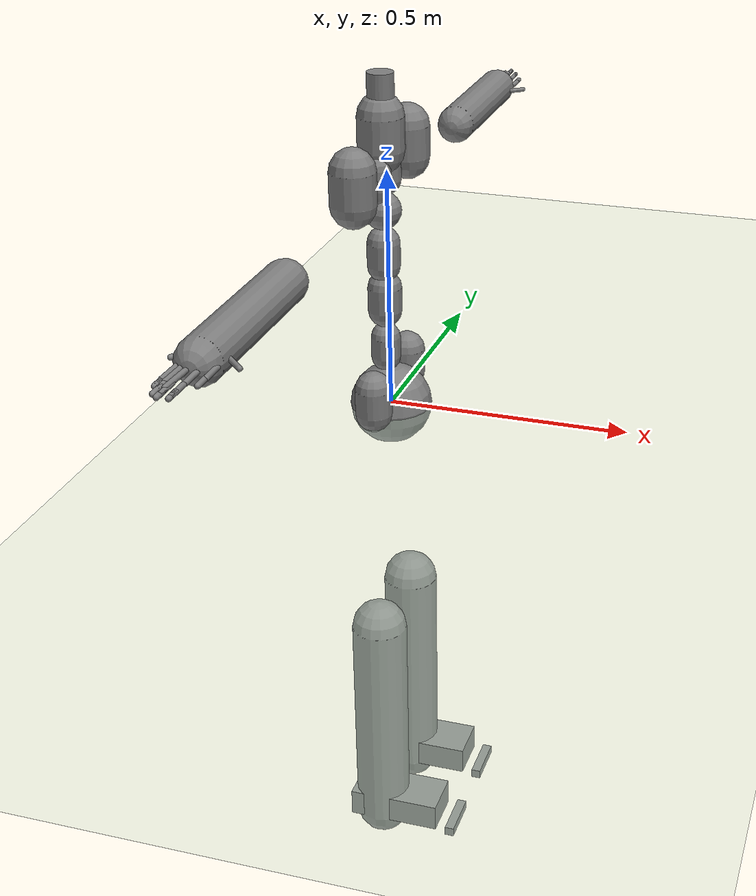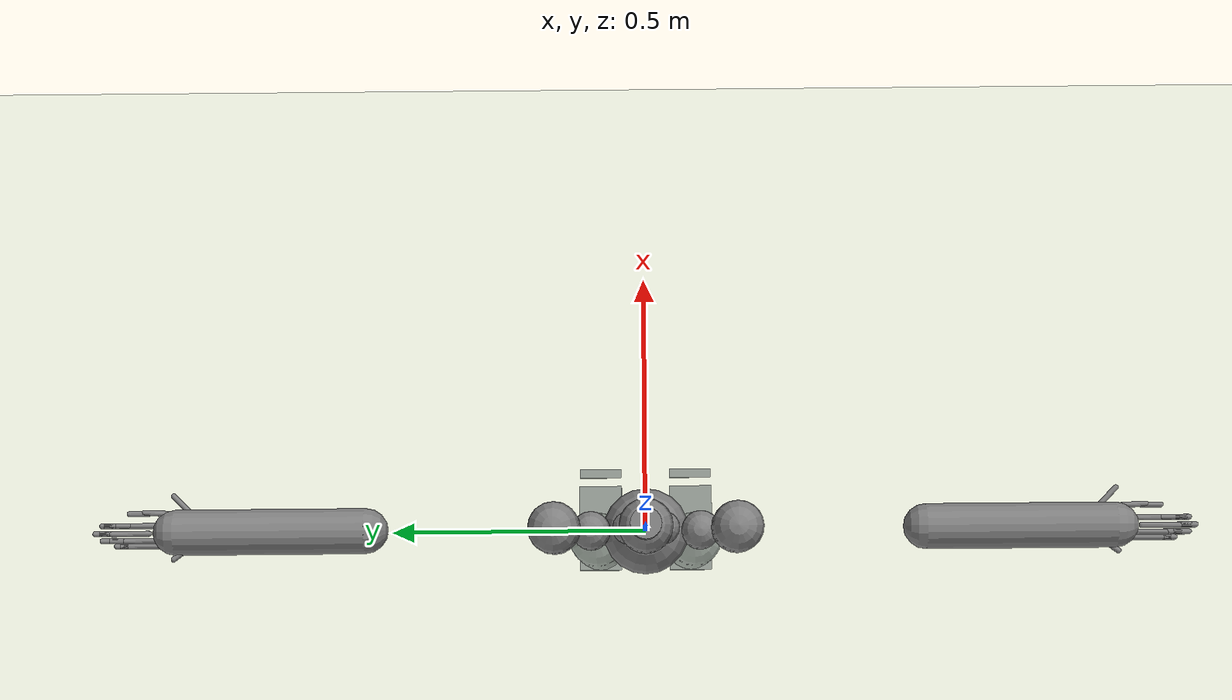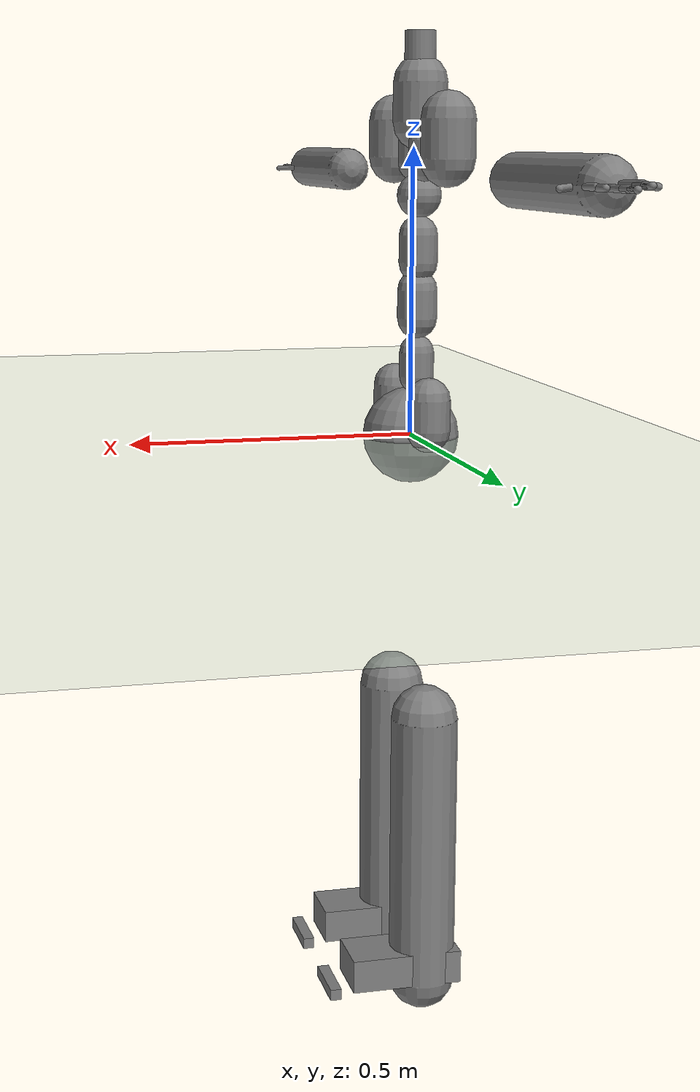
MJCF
<?xml version="1.0" ?>
<mujoco model="humanoid">
  <compiler coordinate="local"/>
  <statistic extent="2" center="0 0 1"/>
  <option timestep="0.00555"/>
  <default>
    <motor ctrlrange="-1 1" ctrllimited="true"/>
    <geom type="capsule" condim="1" friction="1.0 0.05 0.05" solimp=".9 .99 .003" solref=".015 1"/>
    <joint type="hinge" damping="0.1" stiffness="5" armature=".007" limited="true" solimplimit="0 .99 .01"/>
    <site size=".04" group="3"/>
  </default>
  <asset>
    <texture type="skybox" builtin="gradient" rgb1=".4 .5 .6" rgb2="0 0 0" width="100" height="100"/>
    <texture builtin="flat" height="1278" mark="cross" markrgb="1 1 1" name="texgeom" random="0.01" rgb1="0.8 0.6 0.4" rgb2="0.8 0.6 0.4" type="cube" width="127"/>
    <texture builtin="checker" height="100" name="texplane" rgb1="0 0 0" rgb2="0.8 0.8 0.8" type="2d" width="100"/>
    <material name="MatPlane" reflectance="0.5" shininess="1" specular="1" texrepeat="60 60" texture="texplane"/>
    <material name="geom" texture="texgeom" texuniform="true"/>
  </asset>
  <worldbody>
    <light cutoff="100" diffuse="1 1 1" dir="-0 0 -1.3" directional="true" exponent="1" pos="0 0 1.3" specular=".1 .1 .1"/>
    <geom conaffinity="1" condim="3" name="floor" pos="0 0 0" rgba="0.8 0.9 0.8 1" size="100 100 .2" type="plane" material="MatPlane"/>
    <body name="pHipOrigin" pos="0 0 0">
      <freejoint name="pHipOrigin"/>
      <geom type="sphere" contype="1" conaffinity="1" density="4629.6296296296305" size="0.08479" pos="0.0000 0.0000 -0.0000"/>
      <body name="jL5S1" pos="-0.00955469 0 0.08599200">
        <geom type="capsule" contype="1" conaffinity="1" density="1000" fromto="0 0 0.01730 0 0 0.06056" size="0.03028"/>
        <joint name="jL5S1_x" type="hinge" pos="0 0 0" axis="1 0 0" stiffness="500" damping="500" armature="0.02" range="-180.0000 180.0000"/>
        <joint name="jL5S1_y" type="hinge" pos="0 0 0" axis="0 1 0" stiffness="500" damping="500" armature="0.02" range="-180.0000 180.0000"/>
        <joint name="jL5S1_z" type="hinge" pos="0 0 0" axis="0 0 1" stiffness="500" damping="500" armature="0.02" range="-180.0000 180.0000"/>
        <body name="jL4L3" pos="0 0 0.09949745">
          <geom type="capsule" contype="1" conaffinity="1" density="1000" fromto="0 0 0.01990 0 0 0.06965" size="0.03482"/>
          <joint name="jL4L3_x" type="hinge" pos="0 0 0" axis="1 0 0" stiffness="500" damping="500" armature="0.02" range="-180.0000 180.0000"/>
          <joint name="jL4L3_y" type="hinge" pos="0 0 0" axis="0 1 0" stiffness="500" damping="500" armature="0.02" range="-180.0000 180.0000"/>
          <joint name="jL4L3_z" type="hinge" pos="0 0 0" axis="0 0 1" stiffness="500" damping="500" armature="0.02" range="-180.0000 180.0000"/>
          <body name="jL1T12" pos="-0.00074468 0 0.09652331">
            <geom type="capsule" contype="1" conaffinity="1" density="1000" fromto="0 0 0.01931 0 0 0.06757" size="0.03378"/>
            <joint name="jL1T12_x" type="hinge" pos="0 0 0" axis="1 0 0" stiffness="500" damping="500" armature="0.02" range="-180.0000 180.0000"/>
            <joint name="jL1T12_y" type="hinge" pos="0 0 0" axis="0 1 0" stiffness="500" damping="500" armature="0.02" range="-180.0000 180.0000"/>
            <joint name="jL1T12_z" type="hinge" pos="0 0 0" axis="0 0 1" stiffness="500" damping="500" armature="0.02" range="-180.0000 180.0000"/>
            <body name="jT9T8" pos="-0.00074526 0 0.09641115">
              <geom type="sphere" contype="1" conaffinity="1" density="1000" size="0.03857" pos="0.000 0.0000 0.038566"/>
              <joint name="jT9T8_x" type="hinge" pos="0 0 0" axis="1 0 0" stiffness="500" damping="500" armature="0.02" range="-180.0000 180.0000"/>
              <joint name="jT9T8_y" type="hinge" pos="0 0 0" axis="0 1 0" stiffness="500" damping="500" armature="0.02" range="-180.0000 180.0000"/>
              <joint name="jT9T8_z" type="hinge" pos="0 0 0" axis="0 0 1" stiffness="500" damping="500" armature="0.02" range="-180.0000 180.0000"/>
              <body name="jT1C7" pos="0 0 0.13433501">
                <geom type="capsule" contype="1" conaffinity="1" density="1000" fromto="0 0 0.02687 0 0 0.09403" size="0.04702"/>
                <joint name="jT1C7_x" type="hinge" pos="0 0 0" axis="1 0 0" stiffness="500" damping="500" armature="0.02" range="-180.0000 180.0000"/>
                <joint name="jT1C7_y" type="hinge" pos="0 0 0" axis="0 1 0" stiffness="500" damping="500" armature="0.02" range="-180.0000 180.0000"/>
                <joint name="jT1C7_z" type="hinge" pos="0 0 0" axis="0 0 1" stiffness="500" damping="500" armature="0.02" range="-180.0000 180.0000"/>
                <body name="jC1Head" pos="0.00105737 0 0.08962587">
                  <geom type="cylinder" contype="1" conaffinity="1" density="1000" fromto="0 0 0 0 0 0.08963" size="0.02689"/>
                  <joint name="jC1Head_x" type="hinge" pos="0 0 0" axis="1 0 0" stiffness="500" damping="500" armature="0.02" range="-180.0000 180.0000"/>
                  <joint name="jC1Head_y" type="hinge" pos="0 0 0" axis="0 1 0" stiffness="500" damping="500" armature="0.02" range="-180.0000 180.0000"/>
                  <joint name="jC1Head_z" type="hinge" pos="0 0 0" axis="0 0 1" stiffness="500" damping="500" armature="0.02" range="-180.0000 180.0000"/>
                </body>
              </body>
              <body name="jRightT4Shoulder" pos="0 -0.03093735 0.07543204">
                <geom type="capsule" contype="1" conaffinity="1" density="1000" fromto="0 0 0.01631 0 0 0.05707" size="0.02854"/>
                <joint name="jRightT4Shoulder_x" type="hinge" pos="0 0 0" axis="1 0 0" stiffness="500" damping="500" armature="0.02" range="-180.0000 180.0000"/>
                <joint name="jRightT4Shoulder_y" type="hinge" pos="0 0 0" axis="0 1 0" stiffness="500" damping="500" armature="0.02" range="-180.0000 180.0000"/>
                <joint name="jRightT4Shoulder_z" type="hinge" pos="0 0 0" axis="0 0 1" stiffness="500" damping="500" armature="0.02" range="-180.0000 180.0000"/>
                <body name="jRightShoulder" pos="0 -0.13014090 0">
                  <geom type="capsule" contype="1" conaffinity="1" density="1000" fromto="0 0 0.02603 0 0 0.09110" size="0.04555"/>
                  <joint name="jRightShoulder_x" type="hinge" pos="0 0 0" axis="1 0 0" stiffness="500" damping="500" armature="0.02" range="-180.0000 180.0000"/>
                  <joint name="jRightShoulder_y" type="hinge" pos="0 0 0" axis="0 1 0" stiffness="500" damping="500" armature="0.02" range="-180.0000 180.0000"/>
                  <joint name="jRightShoulder_z" type="hinge" pos="0 0 0" axis="0 0 1" stiffness="500" damping="500" armature="0.02" range="-180.0000 180.0000"/>
                  <body name="jRightElbow" pos="0 -0.33835456 0">
                    <geom type="capsule" contype="1" conaffinity="1" density="1000" fromto="0 0 0 0.00000000 -0.33835456 0.00000000" size="0.04060"/>
                    <joint name="jRightElbow_x" type="hinge" pos="0 0 0" axis="1 0 0" stiffness="500" damping="500" armature="0.02" range="-180.0000 180.0000"/>
                    <joint name="jRightElbow_y" type="hinge" pos="0 0 0" axis="0 1 0" stiffness="500" damping="500" armature="0.02" range="-180.0000 180.0000"/>
                    <joint name="jRightElbow_z" type="hinge" pos="0 0 0" axis="0 0 1" stiffness="500" damping="500" armature="0.02" range="-180.0000 180.0000"/>
                    <body name="jRightWrist" pos="0.00011163 -0.27736065 0">
                      <geom density="1000" type="box" pos="0 0 0" size="0.035 0.03 0.01" quat="1.0000 0.0000 0.0000 0.0000"/>
                      <joint name="jRightWrist_x" type="hinge" pos="0 0 0" axis="1 0 0" stiffness="500" damping="500" armature="0.02" range="-180.0000 180.0000"/>
                      <joint name="jRightWrist_y" type="hinge" pos="0 0 0" axis="0 1 0" stiffness="500" damping="500" armature="0.02" range="-180.0000 180.0000"/>
                      <joint name="jRightWrist_z" type="hinge" pos="0 0 0" axis="0 0 1" stiffness="500" damping="500" armature="0.02" range="-180.0000 180.0000"/>
                      <body name="jRightFirstCMC" pos="0.03315231 -0.03177835 -0.00150134">
                        <geom type="capsule" contype="1" conaffinity="1" density="1000" fromto="0 0 0 0.03315231 -0.03177835 -0.00150134" size="0.005"/>
                        <joint name="jRightFirstCMC_x" type="hinge" pos="0 0 0" axis="1 0 0" stiffness="500" damping="500" armature="0.02" range="-180.0000 180.0000"/>
                        <joint name="jRightFirstCMC_y" type="hinge" pos="0 0 0" axis="0 1 0" stiffness="500" damping="500" armature="0.02" range="-180.0000 180.0000"/>
                        <joint name="jRightFirstCMC_z" type="hinge" pos="0 0 0" axis="0 0 1" stiffness="500" damping="500" armature="0.02" range="-180.0000 180.0000"/>
                        <body name="jRightFirstMCP" pos="0.00149789 -0.04226939 0.00089315">
                          <geom type="capsule" contype="1" conaffinity="1" density="1000" fromto="0 0 0 0.00149789 -0.04226939 0.00089315" size="0.005"/>
                          <joint name="jRightFirstMCP_x" type="hinge" pos="0 0 0" axis="1 0 0" stiffness="500" damping="500" armature="0.02" range="-180.0000 180.0000"/>
                          <joint name="jRightFirstMCP_y" type="hinge" pos="0 0 0" axis="0 1 0" stiffness="500" damping="500" armature="0.02" range="-180.0000 180.0000"/>
                          <joint name="jRightFirstMCP_z" type="hinge" pos="0 0 0" axis="0 0 1" stiffness="500" damping="500" armature="0.02" range="-180.0000 180.0000"/>
                          <body name="jRightIP" pos="0 -0.03429700 0">
                            <geom type="capsule" contype="1" conaffinity="1" density="1000" fromto="0 0 0 0.00000000 -0.03429700 0.00000000" size="0.005"/>
                            <joint name="jRightIP_x" type="hinge" pos="0 0 0" axis="1 0 0" stiffness="500" damping="500" armature="0.02" range="-180.0000 180.0000"/>
                            <joint name="jRightIP_y" type="hinge" pos="0 0 0" axis="0 1 0" stiffness="500" damping="500" armature="0.02" range="-180.0000 180.0000"/>
                            <joint name="jRightIP_z" type="hinge" pos="0 0 0" axis="0 0 1" stiffness="500" damping="500" armature="0.02" range="-180.0000 180.0000"/>
                          </body>
                        </body>
                      </body>
                      <body name="jRightSecondCMC" pos="0.01272578 -0.03718070 -0.00064852">
                        <geom type="capsule" contype="1" conaffinity="1" density="1000" fromto="0 0 0 0.01272578 -0.03718070 -0.00064852" size="0.005"/>
                        <joint name="jRightSecondCMC_x" type="hinge" pos="0 0 0" axis="1 0 0" stiffness="500" damping="500" armature="0.02" range="-180.0000 180.0000"/>
                        <joint name="jRightSecondCMC_y" type="hinge" pos="0 0 0" axis="0 1 0" stiffness="500" damping="500" armature="0.02" range="-180.0000 180.0000"/>
                        <joint name="jRightSecondCMC_z" type="hinge" pos="0 0 0" axis="0 0 1" stiffness="500" damping="500" armature="0.02" range="-180.0000 180.0000"/>
                        <body name="jRightSecondMCP" pos="-0.00038700 -0.06172404 -0.00064028">
                          <geom type="capsule" contype="1" conaffinity="1" density="1000" fromto="0 0 0 -0.00038700 -0.06172404 -0.00064028" size="0.005"/>
                          <joint name="jRightSecondMCP_x" type="hinge" pos="0 0 0" axis="1 0 0" stiffness="500" damping="500" armature="0.02" range="-180.0000 180.0000"/>
                          <joint name="jRightSecondMCP_y" type="hinge" pos="0 0 0" axis="0 1 0" stiffness="500" damping="500" armature="0.02" range="-180.0000 180.0000"/>
                          <joint name="jRightSecondMCP_z" type="hinge" pos="0 0 0" axis="0 0 1" stiffness="500" damping="500" armature="0.02" range="-180.0000 180.0000"/>
                          <body name="jRightSecondPIP" pos="0 -0.04482743 0">
                            <geom type="capsule" contype="1" conaffinity="1" density="1000" fromto="0 0 0 0.00000000 -0.04482743 0.00000000" size="0.005"/>
                            <joint name="jRightSecondPIP_x" type="hinge" pos="0 0 0" axis="1 0 0" stiffness="500" damping="500" armature="0.02" range="-180.0000 180.0000"/>
                            <joint name="jRightSecondPIP_y" type="hinge" pos="0 0 0" axis="0 1 0" stiffness="500" damping="500" armature="0.02" range="-180.0000 180.0000"/>
                            <joint name="jRightSecondPIP_z" type="hinge" pos="0 0 0" axis="0 0 1" stiffness="500" damping="500" armature="0.02" range="-180.0000 180.0000"/>
                            <body name="jRightSecondDIP" pos="0 -0.02446628 0">
                              <geom type="capsule" contype="1" conaffinity="1" density="1000" fromto="0 0 0 0.00000000 -0.02446628 0.00000000" size="0.005"/>
                              <joint name="jRightSecondDIP_x" type="hinge" pos="0 0 0" axis="1 0 0" stiffness="500" damping="500" armature="0.02" range="-180.0000 180.0000"/>
                              <joint name="jRightSecondDIP_y" type="hinge" pos="0 0 0" axis="0 1 0" stiffness="500" damping="500" armature="0.02" range="-180.0000 180.0000"/>
                              <joint name="jRightSecondDIP_z" type="hinge" pos="0 0 0" axis="0 0 1" stiffness="500" damping="500" armature="0.02" range="-180.0000 180.0000"/>
                            </body>
                          </body>
                        </body>
                      </body>
                      <body name="jRightThirdCMC" pos="-0.00075770 -0.04097490 0.00172265">
                        <geom type="capsule" contype="1" conaffinity="1" density="1000" fromto="0 0 0 -0.00075770 -0.04097490 0.00172265" size="0.005"/>
                        <joint name="jRightThirdCMC_x" type="hinge" pos="0 0 0" axis="1 0 0" stiffness="500" damping="500" armature="0.02" range="-180.0000 180.0000"/>
                        <joint name="jRightThirdCMC_y" type="hinge" pos="0 0 0" axis="0 1 0" stiffness="500" damping="500" armature="0.02" range="-180.0000 180.0000"/>
                        <joint name="jRightThirdCMC_z" type="hinge" pos="0 0 0" axis="0 0 1" stiffness="500" damping="500" armature="0.02" range="-180.0000 180.0000"/>
                        <body name="jRightThirdMCP" pos="-0.00079945 -0.06623436 0.00180198">
                          <geom type="capsule" contype="1" conaffinity="1" density="1000" fromto="0 0 0 -0.00079945 -0.06623436 0.00180198" size="0.005"/>
                          <joint name="jRightThirdMCP_x" type="hinge" pos="0 0 0" axis="1 0 0" stiffness="500" damping="500" armature="0.02" range="-180.0000 180.0000"/>
                          <joint name="jRightThirdMCP_y" type="hinge" pos="0 0 0" axis="0 1 0" stiffness="500" damping="500" armature="0.02" range="-180.0000 180.0000"/>
                          <joint name="jRightThirdMCP_z" type="hinge" pos="0 0 0" axis="0 0 1" stiffness="500" damping="500" armature="0.02" range="-180.0000 180.0000"/>
                          <body name="jRightThirdPIP" pos="0 -0.04398780 0">
                            <geom type="capsule" contype="1" conaffinity="1" density="1000" fromto="0 0 0 0.00000000 -0.04398780 0.00000000" size="0.005"/>
                            <joint name="jRightThirdPIP_x" type="hinge" pos="0 0 0" axis="1 0 0" stiffness="500" damping="500" armature="0.02" range="-180.0000 180.0000"/>
                            <joint name="jRightThirdPIP_y" type="hinge" pos="0 0 0" axis="0 1 0" stiffness="500" damping="500" armature="0.02" range="-180.0000 180.0000"/>
                            <joint name="jRightThirdPIP_z" type="hinge" pos="0 0 0" axis="0 0 1" stiffness="500" damping="500" armature="0.02" range="-180.0000 180.0000"/>
                            <body name="jRightThirdDIP" pos="0 -0.02600026 0">
                              <geom type="capsule" contype="1" conaffinity="1" density="1000" fromto="0 0 0 0.00000000 -0.02600026 0.00000000" size="0.005"/>
                              <joint name="jRightThirdDIP_x" type="hinge" pos="0 0 0" axis="1 0 0" stiffness="500" damping="500" armature="0.02" range="-180.0000 180.0000"/>
                              <joint name="jRightThirdDIP_y" type="hinge" pos="0 0 0" axis="0 1 0" stiffness="500" damping="500" armature="0.02" range="-180.0000 180.0000"/>
                              <joint name="jRightThirdDIP_z" type="hinge" pos="0 0 0" axis="0 0 1" stiffness="500" damping="500" armature="0.02" range="-180.0000 180.0000"/>
                            </body>
                          </body>
                        </body>
                      </body>
                      <body name="jRightFourthCMC" pos="-0.01327380 -0.03696971 0.00087021">
                        <geom type="capsule" contype="1" conaffinity="1" density="1000" fromto="0 0 0 -0.01327380 -0.03696971 0.00087021" size="0.005"/>
                        <joint name="jRightFourthCMC_x" type="hinge" pos="0 0 0" axis="1 0 0" stiffness="500" damping="500" armature="0.02" range="-180.0000 180.0000"/>
                        <joint name="jRightFourthCMC_y" type="hinge" pos="0 0 0" axis="0 1 0" stiffness="500" damping="500" armature="0.02" range="-180.0000 180.0000"/>
                        <joint name="jRightFourthCMC_z" type="hinge" pos="0 0 0" axis="0 0 1" stiffness="500" damping="500" armature="0.02" range="-180.0000 180.0000"/>
                        <body name="jRightFourthMCP" pos="-0.00041523 -0.05691085 0.00089411">
                          <geom type="capsule" contype="1" conaffinity="1" density="1000" fromto="0 0 0 -0.00041523 -0.05691085 0.00089411" size="0.005"/>
                          <joint name="jRightFourthMCP_x" type="hinge" pos="0 0 0" axis="1 0 0" stiffness="500" damping="500" armature="0.02" range="-180.0000 180.0000"/>
                          <joint name="jRightFourthMCP_y" type="hinge" pos="0 0 0" axis="0 1 0" stiffness="500" damping="500" armature="0.02" range="-180.0000 180.0000"/>
                          <joint name="jRightFourthMCP_z" type="hinge" pos="0 0 0" axis="0 0 1" stiffness="500" damping="500" armature="0.02" range="-180.0000 180.0000"/>
                          <body name="jRightFourthPIP" pos="0 -0.04192657 0">
                            <geom type="capsule" contype="1" conaffinity="1" density="1000" fromto="0 0 0 0.00000000 -0.04192657 0.00000000" size="0.005"/>
                            <joint name="jRightFourthPIP_x" type="hinge" pos="0 0 0" axis="1 0 0" stiffness="500" damping="500" armature="0.02" range="-180.0000 180.0000"/>
                            <joint name="jRightFourthPIP_y" type="hinge" pos="0 0 0" axis="0 1 0" stiffness="500" damping="500" armature="0.02" range="-180.0000 180.0000"/>
                            <joint name="jRightFourthPIP_z" type="hinge" pos="0 0 0" axis="0 0 1" stiffness="500" damping="500" armature="0.02" range="-180.0000 180.0000"/>
                            <body name="jRightFourthDIP" pos="0 -0.02761231 0">
                              <geom type="capsule" contype="1" conaffinity="1" density="1000" fromto="0 0 0 0.00000000 -0.02761231 0.00000000" size="0.005"/>
                              <joint name="jRightFourthDIP_x" type="hinge" pos="0 0 0" axis="1 0 0" stiffness="500" damping="500" armature="0.02" range="-180.0000 180.0000"/>
                              <joint name="jRightFourthDIP_y" type="hinge" pos="0 0 0" axis="0 1 0" stiffness="500" damping="500" armature="0.02" range="-180.0000 180.0000"/>
                              <joint name="jRightFourthDIP_z" type="hinge" pos="0 0 0" axis="0 0 1" stiffness="500" damping="500" armature="0.02" range="-180.0000 180.0000"/>
                            </body>
                          </body>
                        </body>
                      </body>
                      <body name="jRightFifthCMC" pos="-0.02323775 -0.03237915 0.00063874">
                        <geom type="capsule" contype="1" conaffinity="1" density="1000" fromto="0 0 0 -0.02323775 -0.03237915 0.00063874" size="0.005"/>
                        <joint name="jRightFifthCMC_x" type="hinge" pos="0 0 0" axis="1 0 0" stiffness="500" damping="500" armature="0.02" range="-180.0000 180.0000"/>
                        <joint name="jRightFifthCMC_y" type="hinge" pos="0 0 0" axis="0 1 0" stiffness="500" damping="500" armature="0.02" range="-180.0000 180.0000"/>
                        <joint name="jRightFifthCMC_z" type="hinge" pos="0 0 0" axis="0 0 1" stiffness="500" damping="500" armature="0.02" range="-180.0000 180.0000"/>
                        <body name="jRightFifthMCP" pos="-0.00000819 -0.05541997 0.00076265">
                          <geom type="capsule" contype="1" conaffinity="1" density="1000" fromto="0 0 0 -0.00000819 -0.05541997 0.00076265" size="0.005"/>
                          <joint name="jRightFifthMCP_x" type="hinge" pos="0 0 0" axis="1 0 0" stiffness="500" damping="500" armature="0.02" range="-180.0000 180.0000"/>
                          <joint name="jRightFifthMCP_y" type="hinge" pos="0 0 0" axis="0 1 0" stiffness="500" damping="500" armature="0.02" range="-180.0000 180.0000"/>
                          <joint name="jRightFifthMCP_z" type="hinge" pos="0 0 0" axis="0 0 1" stiffness="500" damping="500" armature="0.02" range="-180.0000 180.0000"/>
                          <body name="jRightFifthPIP" pos="0 -0.03538021 0">
                            <geom type="capsule" contype="1" conaffinity="1" density="1000" fromto="0 0 0 0.00000000 -0.03538021 0.00000000" size="0.005"/>
                            <joint name="jRightFifthPIP_x" type="hinge" pos="0 0 0" axis="1 0 0" stiffness="500" damping="500" armature="0.02" range="-180.0000 180.0000"/>
                            <joint name="jRightFifthPIP_y" type="hinge" pos="0 0 0" axis="0 1 0" stiffness="500" damping="500" armature="0.02" range="-180.0000 180.0000"/>
                            <joint name="jRightFifthPIP_z" type="hinge" pos="0 0 0" axis="0 0 1" stiffness="500" damping="500" armature="0.02" range="-180.0000 180.0000"/>
                            <body name="jRightFifthDIP" pos="0 -0.02114615 0">
                              <geom type="capsule" contype="1" conaffinity="1" density="1000" fromto="0 0 0 0.00000000 -0.02114615 0.00000000" size="0.005"/>
                              <joint name="jRightFifthDIP_x" type="hinge" pos="0 0 0" axis="1 0 0" stiffness="500" damping="500" armature="0.02" range="-180.0000 180.0000"/>
                              <joint name="jRightFifthDIP_y" type="hinge" pos="0 0 0" axis="0 1 0" stiffness="500" damping="500" armature="0.02" range="-180.0000 180.0000"/>
                              <joint name="jRightFifthDIP_z" type="hinge" pos="0 0 0" axis="0 0 1" stiffness="500" damping="500" armature="0.02" range="-180.0000 180.0000"/>
                            </body>
                          </body>
                        </body>
                      </body>
                    </body>
                  </body>
                </body>
              </body>
              <body name="jLeftT4Shoulder" pos="0 0.03079467 0.07508417">
                <geom type="capsule" contype="1" conaffinity="1" density="1000" fromto="0 0 0.01623 0 0 0.05681" size="0.02840"/>
                <joint name="jLeftT4Shoulder_x" type="hinge" pos="0 0 0" axis="1 0 0" stiffness="500" damping="500" armature="0.02" range="-180.0000 180.0000"/>
                <joint name="jLeftT4Shoulder_y" type="hinge" pos="0 0 0" axis="0 1 0" stiffness="500" damping="500" armature="0.02" range="-180.0000 180.0000"/>
                <joint name="jLeftT4Shoulder_z" type="hinge" pos="0 0 0" axis="0 0 1" stiffness="500" damping="500" armature="0.02" range="-180.0000 180.0000"/>
                <body name="jLeftShoulder" pos="0 0.13074751 0">
                  <geom type="capsule" contype="1" conaffinity="1" density="1000" fromto="0 0 0.02615 0 0 0.09152" size="0.04576"/>
                  <joint name="jLeftShoulder_x" type="hinge" pos="0 0 0" axis="1 0 0" stiffness="500" damping="500" armature="0.02" range="-180.0000 180.0000"/>
                  <joint name="jLeftShoulder_y" type="hinge" pos="0 0 0" axis="0 1 0" stiffness="500" damping="500" armature="0.02" range="-180.0000 180.0000"/>
                  <joint name="jLeftShoulder_z" type="hinge" pos="0 0 0" axis="0 0 1" stiffness="500" damping="500" armature="0.02" range="-180.0000 180.0000"/>
                  <body name="jLeftElbow" pos="0 0.33850649 0">
                    <geom type="capsule" contype="1" conaffinity="1" density="1000" fromto="0 0 0 0.00000000 0.33850649 0.00000000" size="0.04062"/>
                    <joint name="jLeftElbow_x" type="hinge" pos="0 0 0" axis="1 0 0" stiffness="500" damping="500" armature="0.02" range="-180.0000 180.0000"/>
                    <joint name="jLeftElbow_y" type="hinge" pos="0 0 0" axis="0 1 0" stiffness="500" damping="500" armature="0.02" range="-180.0000 180.0000"/>
                    <joint name="jLeftElbow_z" type="hinge" pos="0 0 0" axis="0 0 1" stiffness="500" damping="500" armature="0.02" range="-180.0000 180.0000"/>
                    <body name="jLeftWrist" pos="0.00011185 0.27789265 0">
                      <geom density="1000" type="box" pos="0 0 0" size="0.035 0.03 0.01" quat="1.0000 0.0000 0.0000 0.0000"/>
                      <joint name="jLeftWrist_x" type="hinge" pos="0 0 0" axis="1 0 0" stiffness="500" damping="500" armature="0.02" range="-180.0000 180.0000"/>
                      <joint name="jLeftWrist_y" type="hinge" pos="0 0 0" axis="0 1 0" stiffness="500" damping="500" armature="0.02" range="-180.0000 180.0000"/>
                      <joint name="jLeftWrist_z" type="hinge" pos="0 0 0" axis="0 0 1" stiffness="500" damping="500" armature="0.02" range="-180.0000 180.0000"/>
                      <body name="jLeftFirstCMC" pos="0.03244830 0.03252494 -0.00145228">
                        <geom type="capsule" contype="1" conaffinity="1" density="1000" fromto="0 0 0 0.03244830 0.03252494 -0.00145228" size="0.005"/>
                        <joint name="jLeftFirstCMC_x" type="hinge" pos="0 0 0" axis="1 0 0" stiffness="500" damping="500" armature="0.02" range="-180.0000 180.0000"/>
                        <joint name="jLeftFirstCMC_y" type="hinge" pos="0 0 0" axis="0 1 0" stiffness="500" damping="500" armature="0.02" range="-180.0000 180.0000"/>
                        <joint name="jLeftFirstCMC_z" type="hinge" pos="0 0 0" axis="0 0 1" stiffness="500" damping="500" armature="0.02" range="-180.0000 180.0000"/>
                        <body name="jLeftFirstMCP" pos="0.00148346 0.04226844 0.00087041">
                          <geom type="capsule" contype="1" conaffinity="1" density="1000" fromto="0 0 0 0.00148346 0.04226844 0.00087041" size="0.005"/>
                          <joint name="jLeftFirstMCP_x" type="hinge" pos="0 0 0" axis="1 0 0" stiffness="500" damping="500" armature="0.02" range="-180.0000 180.0000"/>
                          <joint name="jLeftFirstMCP_y" type="hinge" pos="0 0 0" axis="0 1 0" stiffness="500" damping="500" armature="0.02" range="-180.0000 180.0000"/>
                          <joint name="jLeftFirstMCP_z" type="hinge" pos="0 0 0" axis="0 0 1" stiffness="500" damping="500" armature="0.02" range="-180.0000 180.0000"/>
                          <body name="jLeftIP" pos="0 0.03429700 0">
                            <geom type="capsule" contype="1" conaffinity="1" density="1000" fromto="0 0 0 0.00000000 0.03429700 0.00000000" size="0.005"/>
                            <joint name="jLeftIP_x" type="hinge" pos="0 0 0" axis="1 0 0" stiffness="500" damping="500" armature="0.02" range="-180.0000 180.0000"/>
                            <joint name="jLeftIP_y" type="hinge" pos="0 0 0" axis="0 1 0" stiffness="500" damping="500" armature="0.02" range="-180.0000 180.0000"/>
                            <joint name="jLeftIP_z" type="hinge" pos="0 0 0" axis="0 0 1" stiffness="500" damping="500" armature="0.02" range="-180.0000 180.0000"/>
                          </body>
                        </body>
                      </body>
                      <body name="jLeftSecondCMC" pos="0.01287236 0.03711228 -0.00065388">
                        <geom type="capsule" contype="1" conaffinity="1" density="1000" fromto="0 0 0 0.01287236 0.03711228 -0.00065388" size="0.005"/>
                        <joint name="jLeftSecondCMC_x" type="hinge" pos="0 0 0" axis="1 0 0" stiffness="500" damping="500" armature="0.02" range="-180.0000 180.0000"/>
                        <joint name="jLeftSecondCMC_y" type="hinge" pos="0 0 0" axis="0 1 0" stiffness="500" damping="500" armature="0.02" range="-180.0000 180.0000"/>
                        <joint name="jLeftSecondCMC_z" type="hinge" pos="0 0 0" axis="0 0 1" stiffness="500" damping="500" armature="0.02" range="-180.0000 180.0000"/>
                        <body name="jLeftSecondMCP" pos="-0.00033744 0.06172530 -0.00064819">
                          <geom type="capsule" contype="1" conaffinity="1" density="1000" fromto="0 0 0 -0.00033744 0.06172530 -0.00064819" size="0.005"/>
                          <joint name="jLeftSecondMCP_x" type="hinge" pos="0 0 0" axis="1 0 0" stiffness="500" damping="500" armature="0.02" range="-180.0000 180.0000"/>
                          <joint name="jLeftSecondMCP_y" type="hinge" pos="0 0 0" axis="0 1 0" stiffness="500" damping="500" armature="0.02" range="-180.0000 180.0000"/>
                          <joint name="jLeftSecondMCP_z" type="hinge" pos="0 0 0" axis="0 0 1" stiffness="500" damping="500" armature="0.02" range="-180.0000 180.0000"/>
                          <body name="jLeftSecondPIP" pos="0 0.04482743 0">
                            <geom type="capsule" contype="1" conaffinity="1" density="1000" fromto="0 0 0 0.00000000 0.04482743 0.00000000" size="0.005"/>
                            <joint name="jLeftSecondPIP_x" type="hinge" pos="0 0 0" axis="1 0 0" stiffness="500" damping="500" armature="0.02" range="-180.0000 180.0000"/>
                            <joint name="jLeftSecondPIP_y" type="hinge" pos="0 0 0" axis="0 1 0" stiffness="500" damping="500" armature="0.02" range="-180.0000 180.0000"/>
                            <joint name="jLeftSecondPIP_z" type="hinge" pos="0 0 0" axis="0 0 1" stiffness="500" damping="500" armature="0.02" range="-180.0000 180.0000"/>
                            <body name="jLeftSecondDIP" pos="0 0.02446628 0">
                              <geom type="capsule" contype="1" conaffinity="1" density="1000" fromto="0 0 0 0.00000000 0.02446628 0.00000000" size="0.005"/>
                              <joint name="jLeftSecondDIP_x" type="hinge" pos="0 0 0" axis="1 0 0" stiffness="500" damping="500" armature="0.02" range="-180.0000 180.0000"/>
                              <joint name="jLeftSecondDIP_y" type="hinge" pos="0 0 0" axis="0 1 0" stiffness="500" damping="500" armature="0.02" range="-180.0000 180.0000"/>
                              <joint name="jLeftSecondDIP_z" type="hinge" pos="0 0 0" axis="0 0 1" stiffness="500" damping="500" armature="0.02" range="-180.0000 180.0000"/>
                            </body>
                          </body>
                        </body>
                      </body>
                      <body name="jLeftThirdCMC" pos="-0.00076215 0.04097858 0.00166523">
                        <geom type="capsule" contype="1" conaffinity="1" density="1000" fromto="0 0 0 -0.00076215 0.04097858 0.00166523" size="0.005"/>
                        <joint name="jLeftThirdCMC_x" type="hinge" pos="0 0 0" axis="1 0 0" stiffness="500" damping="500" armature="0.02" range="-180.0000 180.0000"/>
                        <joint name="jLeftThirdCMC_y" type="hinge" pos="0 0 0" axis="0 1 0" stiffness="500" damping="500" armature="0.02" range="-180.0000 180.0000"/>
                        <joint name="jLeftThirdCMC_z" type="hinge" pos="0 0 0" axis="0 0 1" stiffness="500" damping="500" armature="0.02" range="-180.0000 180.0000"/>
                        <body name="jLeftThirdMCP" pos="-0.00080590 0.06623564 0.00176576">
                          <geom type="capsule" contype="1" conaffinity="1" density="1000" fromto="0 0 0 -0.00080590 0.06623564 0.00176576" size="0.005"/>
                          <joint name="jLeftThirdMCP_x" type="hinge" pos="0 0 0" axis="1 0 0" stiffness="500" damping="500" armature="0.02" range="-180.0000 180.0000"/>
                          <joint name="jLeftThirdMCP_y" type="hinge" pos="0 0 0" axis="0 1 0" stiffness="500" damping="500" armature="0.02" range="-180.0000 180.0000"/>
                          <joint name="jLeftThirdMCP_z" type="hinge" pos="0 0 0" axis="0 0 1" stiffness="500" damping="500" armature="0.02" range="-180.0000 180.0000"/>
                          <body name="jLeftThirdPIP" pos="0 0.04398780 0">
                            <geom type="capsule" contype="1" conaffinity="1" density="1000" fromto="0 0 0 0.00000000 0.04398780 0.00000000" size="0.005"/>
                            <joint name="jLeftThirdPIP_x" type="hinge" pos="0 0 0" axis="1 0 0" stiffness="500" damping="500" armature="0.02" range="-180.0000 180.0000"/>
                            <joint name="jLeftThirdPIP_y" type="hinge" pos="0 0 0" axis="0 1 0" stiffness="500" damping="500" armature="0.02" range="-180.0000 180.0000"/>
                            <joint name="jLeftThirdPIP_z" type="hinge" pos="0 0 0" axis="0 0 1" stiffness="500" damping="500" armature="0.02" range="-180.0000 180.0000"/>
                            <body name="jLeftThirdDIP" pos="0 0.02600026 0">
                              <geom type="capsule" contype="1" conaffinity="1" density="1000" fromto="0 0 0 0.00000000 0.02600026 0.00000000" size="0.005"/>
                              <joint name="jLeftThirdDIP_x" type="hinge" pos="0 0 0" axis="1 0 0" stiffness="500" damping="500" armature="0.02" range="-180.0000 180.0000"/>
                              <joint name="jLeftThirdDIP_y" type="hinge" pos="0 0 0" axis="0 1 0" stiffness="500" damping="500" armature="0.02" range="-180.0000 180.0000"/>
                              <joint name="jLeftThirdDIP_z" type="hinge" pos="0 0 0" axis="0 0 1" stiffness="500" damping="500" armature="0.02" range="-180.0000 180.0000"/>
                            </body>
                          </body>
                        </body>
                      </body>
                      <body name="jLeftFourthCMC" pos="-0.01376086 0.03678061 0.00092894">
                        <geom type="capsule" contype="1" conaffinity="1" density="1000" fromto="0 0 0 -0.01376086 0.03678061 0.00092894" size="0.005"/>
                        <joint name="jLeftFourthCMC_x" type="hinge" pos="0 0 0" axis="1 0 0" stiffness="500" damping="500" armature="0.02" range="-180.0000 180.0000"/>
                        <joint name="jLeftFourthCMC_y" type="hinge" pos="0 0 0" axis="0 1 0" stiffness="500" damping="500" armature="0.02" range="-180.0000 180.0000"/>
                        <joint name="jLeftFourthCMC_z" type="hinge" pos="0 0 0" axis="0 0 1" stiffness="500" damping="500" armature="0.02" range="-180.0000 180.0000"/>
                        <body name="jLeftFourthMCP" pos="-0.00044654 0.05690759 0.00094563">
                          <geom type="capsule" contype="1" conaffinity="1" density="1000" fromto="0 0 0 -0.00044654 0.05690759 0.00094563" size="0.005"/>
                          <joint name="jLeftFourthMCP_x" type="hinge" pos="0 0 0" axis="1 0 0" stiffness="500" damping="500" armature="0.02" range="-180.0000 180.0000"/>
                          <joint name="jLeftFourthMCP_y" type="hinge" pos="0 0 0" axis="0 1 0" stiffness="500" damping="500" armature="0.02" range="-180.0000 180.0000"/>
                          <joint name="jLeftFourthMCP_z" type="hinge" pos="0 0 0" axis="0 0 1" stiffness="500" damping="500" armature="0.02" range="-180.0000 180.0000"/>
                          <body name="jLeftFourthPIP" pos="0 0.04192657 0">
                            <geom type="capsule" contype="1" conaffinity="1" density="1000" fromto="0 0 0 0.00000000 0.04192657 0.00000000" size="0.005"/>
                            <joint name="jLeftFourthPIP_x" type="hinge" pos="0 0 0" axis="1 0 0" stiffness="500" damping="500" armature="0.02" range="-180.0000 180.0000"/>
                            <joint name="jLeftFourthPIP_y" type="hinge" pos="0 0 0" axis="0 1 0" stiffness="500" damping="500" armature="0.02" range="-180.0000 180.0000"/>
                            <joint name="jLeftFourthPIP_z" type="hinge" pos="0 0 0" axis="0 0 1" stiffness="500" damping="500" armature="0.02" range="-180.0000 180.0000"/>
                            <body name="jLeftFourthDIP" pos="0 0.02761231 0">
                              <geom type="capsule" contype="1" conaffinity="1" density="1000" fromto="0 0 0 0.00000000 0.02761231 0.00000000" size="0.005"/>
                              <joint name="jLeftFourthDIP_x" type="hinge" pos="0 0 0" axis="1 0 0" stiffness="500" damping="500" armature="0.02" range="-180.0000 180.0000"/>
                              <joint name="jLeftFourthDIP_y" type="hinge" pos="0 0 0" axis="0 1 0" stiffness="500" damping="500" armature="0.02" range="-180.0000 180.0000"/>
                              <joint name="jLeftFourthDIP_z" type="hinge" pos="0 0 0" axis="0 0 1" stiffness="500" damping="500" armature="0.02" range="-180.0000 180.0000"/>
                            </body>
                          </body>
                        </body>
                      </body>
                      <body name="jLeftFifthCMC" pos="-0.02394171 0.03186727 0.00064900">
                        <geom type="capsule" contype="1" conaffinity="1" density="1000" fromto="0 0 0 -0.02394171 0.03186727 0.00064900" size="0.005"/>
                        <joint name="jLeftFifthCMC_x" type="hinge" pos="0 0 0" axis="1 0 0" stiffness="500" damping="500" armature="0.02" range="-180.0000 180.0000"/>
                        <joint name="jLeftFifthCMC_y" type="hinge" pos="0 0 0" axis="0 1 0" stiffness="500" damping="500" armature="0.02" range="-180.0000 180.0000"/>
                        <joint name="jLeftFifthCMC_z" type="hinge" pos="0 0 0" axis="0 0 1" stiffness="500" damping="500" armature="0.02" range="-180.0000 180.0000"/>
                        <body name="jLeftFifthMCP" pos="-0.00001572 0.05541847 0.00079744">
                          <geom type="capsule" contype="1" conaffinity="1" density="1000" fromto="0 0 0 -0.00001572 0.05541847 0.00079744" size="0.005"/>
                          <joint name="jLeftFifthMCP_x" type="hinge" pos="0 0 0" axis="1 0 0" stiffness="500" damping="500" armature="0.02" range="-180.0000 180.0000"/>
                          <joint name="jLeftFifthMCP_y" type="hinge" pos="0 0 0" axis="0 1 0" stiffness="500" damping="500" armature="0.02" range="-180.0000 180.0000"/>
                          <joint name="jLeftFifthMCP_z" type="hinge" pos="0 0 0" axis="0 0 1" stiffness="500" damping="500" armature="0.02" range="-180.0000 180.0000"/>
                          <body name="jLeftFifthPIP" pos="0 0.03538021 0">
                            <geom type="capsule" contype="1" conaffinity="1" density="1000" fromto="0 0 0 0.00000000 0.03538021 0.00000000" size="0.005"/>
                            <joint name="jLeftFifthPIP_x" type="hinge" pos="0 0 0" axis="1 0 0" stiffness="500" damping="500" armature="0.02" range="-180.0000 180.0000"/>
                            <joint name="jLeftFifthPIP_y" type="hinge" pos="0 0 0" axis="0 1 0" stiffness="500" damping="500" armature="0.02" range="-180.0000 180.0000"/>
                            <joint name="jLeftFifthPIP_z" type="hinge" pos="0 0 0" axis="0 0 1" stiffness="500" damping="500" armature="0.02" range="-180.0000 180.0000"/>
                            <body name="jLeftFifthDIP" pos="0 0.02114615 0">
                              <geom type="capsule" contype="1" conaffinity="1" density="1000" fromto="0 0 0 0.00000000 0.02114615 0.00000000" size="0.005"/>
                              <joint name="jLeftFifthDIP_x" type="hinge" pos="0 0 0" axis="1 0 0" stiffness="500" damping="500" armature="0.02" range="-180.0000 180.0000"/>
                              <joint name="jLeftFifthDIP_y" type="hinge" pos="0 0 0" axis="0 1 0" stiffness="500" damping="500" armature="0.02" range="-180.0000 180.0000"/>
                              <joint name="jLeftFifthDIP_z" type="hinge" pos="0 0 0" axis="0 0 1" stiffness="500" damping="500" armature="0.02" range="-180.0000 180.0000"/>
                            </body>
                          </body>
                        </body>
                      </body>
                    </body>
                  </body>
                </body>
              </body>
            </body>
          </body>
        </body>
      </body>
      <body name="jRightHip" pos="-0.00018083 -0.10731078 0.00162787">
        <geom type="capsule" contype="1" conaffinity="1" density="1000" fromto="0 0 0.02146 0 0 0.07513" size="0.03756"/>
        <joint name="jRightHip_x" type="hinge" pos="0 0 0" axis="1 0 0" stiffness="500" damping="500" armature="0.02" range="-180.0000 180.0000"/>
        <joint name="jRightHip_y" type="hinge" pos="0 0 0" axis="0 1 0" stiffness="500" damping="500" armature="0.02" range="-180.0000 180.0000"/>
        <joint name="jRightHip_z" type="hinge" pos="0 0 0" axis="0 0 1" stiffness="500" damping="500" armature="0.02" range="-180.0000 180.0000"/>
        <body name="jRightKnee" pos="0.00005871 0 -0.49241122">
          <geom type="capsule" contype="1" conaffinity="1" density="1000" fromto="0 0 0 0.00005871 0.00000000 -0.49241122" size="0.05909"/>
          <joint name="jRightKnee_x" type="hinge" pos="0 0 0" axis="1 0 0" stiffness="500" damping="500" armature="0.02" range="-180.0000 180.0000"/>
          <joint name="jRightKnee_y" type="hinge" pos="0 0 0" axis="0 1 0" stiffness="500" damping="500" armature="0.02" range="-180.0000 180.0000"/>
          <joint name="jRightKnee_z" type="hinge" pos="0 0 0" axis="0 0 1" stiffness="500" damping="500" armature="0.02" range="-180.0000 180.0000"/>
          <body name="jRightAnkle" pos="0.00048793 0 -0.43212777">
            <geom density="1000" type="box" pos="0.04 0. -0.03" size="0.1 0.05 0.03" quat="1.0 0 0 0"/>
            <joint name="jRightAnkle_x" type="hinge" pos="0 0 0" axis="1 0 0" stiffness="500" damping="500" armature="0.02" range="-180.0000 180.0000"/>
            <joint name="jRightAnkle_y" type="hinge" pos="0 0 0" axis="0 1 0" stiffness="500" damping="500" armature="0.02" range="-180.0000 180.0000"/>
            <joint name="jRightAnkle_z" type="hinge" pos="0 0 0" axis="0 0 1" stiffness="500" damping="500" armature="0.02" range="-180.0000 180.0000"/>
            <body name="jRightBallFoot" pos="0.17271776 0 -0.07923618">
              <geom density="1000" type="box" pos="0 0 0.02" size="0.01 0.05 0.01" quat="1.0 0 0 0"/>
              <joint name="jRightBallFoot_x" type="hinge" pos="0 0 0" axis="1 0 0" stiffness="500" damping="500" armature="0.02" range="-180.0000 180.0000"/>
              <joint name="jRightBallFoot_y" type="hinge" pos="0 0 0" axis="0 1 0" stiffness="500" damping="500" armature="0.02" range="-180.0000 180.0000"/>
              <joint name="jRightBallFoot_z" type="hinge" pos="0 0 0" axis="0 0 1" stiffness="500" damping="500" armature="0.02" range="-180.0000 180.0000"/>
            </body>
          </body>
        </body>
      </body>
      <body name="jLeftHip" pos="-0.00017826 0.10717148 0.00160426">
        <geom type="capsule" contype="1" conaffinity="1" density="1000" fromto="0 0 0.02144 0 0 0.07503" size="0.03751"/>
        <joint name="jLeftHip_x" type="hinge" pos="0 0 0" axis="1 0 0" stiffness="500" damping="500" armature="0.02" range="-180.0000 180.0000"/>
        <joint name="jLeftHip_y" type="hinge" pos="0 0 0" axis="0 1 0" stiffness="500" damping="500" armature="0.02" range="-180.0000 180.0000"/>
        <joint name="jLeftHip_z" type="hinge" pos="0 0 0" axis="0 0 1" stiffness="500" damping="500" armature="0.02" range="-180.0000 180.0000"/>
        <body name="jLeftKnee" pos="0.00005892 0 -0.49413347">
          <geom type="capsule" contype="1" conaffinity="1" density="1000" fromto="0 0 0 0.00005892 0.00000000 -0.49413347" size="0.05930"/>
          <joint name="jLeftKnee_x" type="hinge" pos="0 0 0" axis="1 0 0" stiffness="500" damping="500" armature="0.02" range="-180.0000 180.0000"/>
          <joint name="jLeftKnee_y" type="hinge" pos="0 0 0" axis="0 1 0" stiffness="500" damping="500" armature="0.02" range="-180.0000 180.0000"/>
          <joint name="jLeftKnee_z" type="hinge" pos="0 0 0" axis="0 0 1" stiffness="500" damping="500" armature="0.02" range="-180.0000 180.0000"/>
          <body name="jLeftAnkle" pos="0.00048793 0 -0.43212777">
            <geom density="1000" type="box" pos="0.04 0. -0.03" size="0.1 0.05 0.03" quat="1.0 0 0 0"/>
            <joint name="jLeftAnkle_x" type="hinge" pos="0 0 0" axis="1 0 0" stiffness="500" damping="500" armature="0.02" range="-180.0000 180.0000"/>
            <joint name="jLeftAnkle_y" type="hinge" pos="0 0 0" axis="0 1 0" stiffness="500" damping="500" armature="0.02" range="-180.0000 180.0000"/>
            <joint name="jLeftAnkle_z" type="hinge" pos="0 0 0" axis="0 0 1" stiffness="500" damping="500" armature="0.02" range="-180.0000 180.0000"/>
            <body name="jLeftBallFoot" pos="0.17271778 0 -0.07923619">
              <geom density="1000" type="box" pos="0 0 0.02" size="0.01 0.05 0.01" quat="1.0 0 0 0"/>
              <joint name="jLeftBallFoot_x" type="hinge" pos="0 0 0" axis="1 0 0" stiffness="500" damping="500" armature="0.02" range="-180.0000 180.0000"/>
              <joint name="jLeftBallFoot_y" type="hinge" pos="0 0 0" axis="0 1 0" stiffness="500" damping="500" armature="0.02" range="-180.0000 180.0000"/>
              <joint name="jLeftBallFoot_z" type="hinge" pos="0 0 0" axis="0 0 1" stiffness="500" damping="500" armature="0.02" range="-180.0000 180.0000"/>
            </body>
          </body>
        </body>
      </body>
    </body>
  </worldbody>
  <actuator>
    <motor name="jL5S1_x" joint="jL5S1_x" gear="500"/>
    <motor name="jL5S1_y" joint="jL5S1_y" gear="500"/>
    <motor name="jL5S1_z" joint="jL5S1_z" gear="500"/>
    <motor name="jL4L3_x" joint="jL4L3_x" gear="500"/>
    <motor name="jL4L3_y" joint="jL4L3_y" gear="500"/>
    <motor name="jL4L3_z" joint="jL4L3_z" gear="500"/>
    <motor name="jL1T12_x" joint="jL1T12_x" gear="500"/>
    <motor name="jL1T12_y" joint="jL1T12_y" gear="500"/>
    <motor name="jL1T12_z" joint="jL1T12_z" gear="500"/>
    <motor name="jT9T8_x" joint="jT9T8_x" gear="500"/>
    <motor name="jT9T8_y" joint="jT9T8_y" gear="500"/>
    <motor name="jT9T8_z" joint="jT9T8_z" gear="500"/>
    <motor name="jT1C7_x" joint="jT1C7_x" gear="500"/>
    <motor name="jT1C7_y" joint="jT1C7_y" gear="500"/>
    <motor name="jT1C7_z" joint="jT1C7_z" gear="500"/>
    <motor name="jC1Head_x" joint="jC1Head_x" gear="500"/>
    <motor name="jC1Head_y" joint="jC1Head_y" gear="500"/>
    <motor name="jC1Head_z" joint="jC1Head_z" gear="500"/>
    <motor name="jRightT4Shoulder_x" joint="jRightT4Shoulder_x" gear="500"/>
    <motor name="jRightT4Shoulder_y" joint="jRightT4Shoulder_y" gear="500"/>
    <motor name="jRightT4Shoulder_z" joint="jRightT4Shoulder_z" gear="500"/>
    <motor name="jRightShoulder_x" joint="jRightShoulder_x" gear="500"/>
    <motor name="jRightShoulder_y" joint="jRightShoulder_y" gear="500"/>
    <motor name="jRightShoulder_z" joint="jRightShoulder_z" gear="500"/>
    <motor name="jRightElbow_x" joint="jRightElbow_x" gear="500"/>
    <motor name="jRightElbow_y" joint="jRightElbow_y" gear="500"/>
    <motor name="jRightElbow_z" joint="jRightElbow_z" gear="500"/>
    <motor name="jRightWrist_x" joint="jRightWrist_x" gear="500"/>
    <motor name="jRightWrist_y" joint="jRightWrist_y" gear="500"/>
    <motor name="jRightWrist_z" joint="jRightWrist_z" gear="500"/>
    <motor name="jLeftT4Shoulder_x" joint="jLeftT4Shoulder_x" gear="500"/>
    <motor name="jLeftT4Shoulder_y" joint="jLeftT4Shoulder_y" gear="500"/>
    <motor name="jLeftT4Shoulder_z" joint="jLeftT4Shoulder_z" gear="500"/>
    <motor name="jLeftShoulder_x" joint="jLeftShoulder_x" gear="500"/>
    <motor name="jLeftShoulder_y" joint="jLeftShoulder_y" gear="500"/>
    <motor name="jLeftShoulder_z" joint="jLeftShoulder_z" gear="500"/>
    <motor name="jLeftElbow_x" joint="jLeftElbow_x" gear="500"/>
    <motor name="jLeftElbow_y" joint="jLeftElbow_y" gear="500"/>
    <motor name="jLeftElbow_z" joint="jLeftElbow_z" gear="500"/>
    <motor name="jLeftWrist_x" joint="jLeftWrist_x" gear="500"/>
    <motor name="jLeftWrist_y" joint="jLeftWrist_y" gear="500"/>
    <motor name="jLeftWrist_z" joint="jLeftWrist_z" gear="500"/>
    <motor name="jRightHip_x" joint="jRightHip_x" gear="500"/>
    <motor name="jRightHip_y" joint="jRightHip_y" gear="500"/>
    <motor name="jRightHip_z" joint="jRightHip_z" gear="500"/>
    <motor name="jRightKnee_x" joint="jRightKnee_x" gear="500"/>
    <motor name="jRightKnee_y" joint="jRightKnee_y" gear="500"/>
    <motor name="jRightKnee_z" joint="jRightKnee_z" gear="500"/>
    <motor name="jRightAnkle_x" joint="jRightAnkle_x" gear="500"/>
    <motor name="jRightAnkle_y" joint="jRightAnkle_y" gear="500"/>
    <motor name="jRightAnkle_z" joint="jRightAnkle_z" gear="500"/>
    <motor name="jRightBallFoot_x" joint="jRightBallFoot_x" gear="500"/>
    <motor name="jRightBallFoot_y" joint="jRightBallFoot_y" gear="500"/>
    <motor name="jRightBallFoot_z" joint="jRightBallFoot_z" gear="500"/>
    <motor name="jLeftHip_x" joint="jLeftHip_x" gear="500"/>
    <motor name="jLeftHip_y" joint="jLeftHip_y" gear="500"/>
    <motor name="jLeftHip_z" joint="jLeftHip_z" gear="500"/>
    <motor name="jLeftKnee_x" joint="jLeftKnee_x" gear="500"/>
    <motor name="jLeftKnee_y" joint="jLeftKnee_y" gear="500"/>
    <motor name="jLeftKnee_z" joint="jLeftKnee_z" gear="500"/>
    <motor name="jLeftAnkle_x" joint="jLeftAnkle_x" gear="500"/>
    <motor name="jLeftAnkle_y" joint="jLeftAnkle_y" gear="500"/>
    <motor name="jLeftAnkle_z" joint="jLeftAnkle_z" gear="500"/>
    <motor name="jLeftBallFoot_x" joint="jLeftBallFoot_x" gear="500"/>
    <motor name="jLeftBallFoot_y" joint="jLeftBallFoot_y" gear="500"/>
    <motor name="jLeftBallFoot_z" joint="jLeftBallFoot_z" gear="500"/>
    <motor name="jLeftFirstCMC_x" joint="jLeftFirstCMC_x" gear="500"/>
    <motor name="jLeftFirstCMC_y" joint="jLeftFirstCMC_y" gear="500"/>
    <motor name="jLeftFirstCMC_z" joint="jLeftFirstCMC_z" gear="500"/>
    <motor name="jLeftFirstMCP_x" joint="jLeftFirstMCP_x" gear="500"/>
    <motor name="jLeftFirstMCP_y" joint="jLeftFirstMCP_y" gear="500"/>
    <motor name="jLeftFirstMCP_z" joint="jLeftFirstMCP_z" gear="500"/>
    <motor name="jLeftIP_x" joint="jLeftIP_x" gear="500"/>
    <motor name="jLeftIP_y" joint="jLeftIP_y" gear="500"/>
    <motor name="jLeftIP_z" joint="jLeftIP_z" gear="500"/>
    <motor name="jLeftSecondCMC_x" joint="jLeftSecondCMC_x" gear="500"/>
    <motor name="jLeftSecondCMC_y" joint="jLeftSecondCMC_y" gear="500"/>
    <motor name="jLeftSecondCMC_z" joint="jLeftSecondCMC_z" gear="500"/>
    <motor name="jLeftSecondMCP_x" joint="jLeftSecondMCP_x" gear="500"/>
    <motor name="jLeftSecondMCP_y" joint="jLeftSecondMCP_y" gear="500"/>
    <motor name="jLeftSecondMCP_z" joint="jLeftSecondMCP_z" gear="500"/>
    <motor name="jLeftSecondPIP_x" joint="jLeftSecondPIP_x" gear="500"/>
    <motor name="jLeftSecondPIP_y" joint="jLeftSecondPIP_y" gear="500"/>
    <motor name="jLeftSecondPIP_z" joint="jLeftSecondPIP_z" gear="500"/>
    <motor name="jLeftSecondDIP_x" joint="jLeftSecondDIP_x" gear="500"/>
    <motor name="jLeftSecondDIP_y" joint="jLeftSecondDIP_y" gear="500"/>
    <motor name="jLeftSecondDIP_z" joint="jLeftSecondDIP_z" gear="500"/>
    <motor name="jLeftThirdCMC_x" joint="jLeftThirdCMC_x" gear="500"/>
    <motor name="jLeftThirdCMC_y" joint="jLeftThirdCMC_y" gear="500"/>
    <motor name="jLeftThirdCMC_z" joint="jLeftThirdCMC_z" gear="500"/>
    <motor name="jLeftThirdMCP_x" joint="jLeftThirdMCP_x" gear="500"/>
    <motor name="jLeftThirdMCP_y" joint="jLeftThirdMCP_y" gear="500"/>
    <motor name="jLeftThirdMCP_z" joint="jLeftThirdMCP_z" gear="500"/>
    <motor name="jLeftThirdPIP_x" joint="jLeftThirdPIP_x" gear="500"/>
    <motor name="jLeftThirdPIP_y" joint="jLeftThirdPIP_y" gear="500"/>
    <motor name="jLeftThirdPIP_z" joint="jLeftThirdPIP_z" gear="500"/>
    <motor name="jLeftThirdDIP_x" joint="jLeftThirdDIP_x" gear="500"/>
    <motor name="jLeftThirdDIP_y" joint="jLeftThirdDIP_y" gear="500"/>
    <motor name="jLeftThirdDIP_z" joint="jLeftThirdDIP_z" gear="500"/>
    <motor name="jLeftFourthCMC_x" joint="jLeftFourthCMC_x" gear="500"/>
    <motor name="jLeftFourthCMC_y" joint="jLeftFourthCMC_y" gear="500"/>
    <motor name="jLeftFourthCMC_z" joint="jLeftFourthCMC_z" gear="500"/>
    <motor name="jLeftFourthMCP_x" joint="jLeftFourthMCP_x" gear="500"/>
    <motor name="jLeftFourthMCP_y" joint="jLeftFourthMCP_y" gear="500"/>
    <motor name="jLeftFourthMCP_z" joint="jLeftFourthMCP_z" gear="500"/>
    <motor name="jLeftFourthPIP_x" joint="jLeftFourthPIP_x" gear="500"/>
    <motor name="jLeftFourthPIP_y" joint="jLeftFourthPIP_y" gear="500"/>
    <motor name="jLeftFourthPIP_z" joint="jLeftFourthPIP_z" gear="500"/>
    <motor name="jLeftFourthDIP_x" joint="jLeftFourthDIP_x" gear="500"/>
    <motor name="jLeftFourthDIP_y" joint="jLeftFourthDIP_y" gear="500"/>
    <motor name="jLeftFourthDIP_z" joint="jLeftFourthDIP_z" gear="500"/>
    <motor name="jLeftFifthCMC_x" joint="jLeftFifthCMC_x" gear="500"/>
    <motor name="jLeftFifthCMC_y" joint="jLeftFifthCMC_y" gear="500"/>
    <motor name="jLeftFifthCMC_z" joint="jLeftFifthCMC_z" gear="500"/>
    <motor name="jLeftFifthMCP_x" joint="jLeftFifthMCP_x" gear="500"/>
    <motor name="jLeftFifthMCP_y" joint="jLeftFifthMCP_y" gear="500"/>
    <motor name="jLeftFifthMCP_z" joint="jLeftFifthMCP_z" gear="500"/>
    <motor name="jLeftFifthPIP_x" joint="jLeftFifthPIP_x" gear="500"/>
    <motor name="jLeftFifthPIP_y" joint="jLeftFifthPIP_y" gear="500"/>
    <motor name="jLeftFifthPIP_z" joint="jLeftFifthPIP_z" gear="500"/>
    <motor name="jLeftFifthDIP_x" joint="jLeftFifthDIP_x" gear="500"/>
    <motor name="jLeftFifthDIP_y" joint="jLeftFifthDIP_y" gear="500"/>
    <motor name="jLeftFifthDIP_z" joint="jLeftFifthDIP_z" gear="500"/>
    <motor name="jRightFirstCMC_x" joint="jRightFirstCMC_x" gear="500"/>
    <motor name="jRightFirstCMC_y" joint="jRightFirstCMC_y" gear="500"/>
    <motor name="jRightFirstCMC_z" joint="jRightFirstCMC_z" gear="500"/>
    <motor name="jRightFirstMCP_x" joint="jRightFirstMCP_x" gear="500"/>
    <motor name="jRightFirstMCP_y" joint="jRightFirstMCP_y" gear="500"/>
    <motor name="jRightFirstMCP_z" joint="jRightFirstMCP_z" gear="500"/>
    <motor name="jRightIP_x" joint="jRightIP_x" gear="500"/>
    <motor name="jRightIP_y" joint="jRightIP_y" gear="500"/>
    <motor name="jRightIP_z" joint="jRightIP_z" gear="500"/>
    <motor name="jRightSecondCMC_x" joint="jRightSecondCMC_x" gear="500"/>
    <motor name="jRightSecondCMC_y" joint="jRightSecondCMC_y" gear="500"/>
    <motor name="jRightSecondCMC_z" joint="jRightSecondCMC_z" gear="500"/>
    <motor name="jRightSecondMCP_x" joint="jRightSecondMCP_x" gear="500"/>
    <motor name="jRightSecondMCP_y" joint="jRightSecondMCP_y" gear="500"/>
    <motor name="jRightSecondMCP_z" joint="jRightSecondMCP_z" gear="500"/>
    <motor name="jRightSecondPIP_x" joint="jRightSecondPIP_x" gear="500"/>
    <motor name="jRightSecondPIP_y" joint="jRightSecondPIP_y" gear="500"/>
    <motor name="jRightSecondPIP_z" joint="jRightSecondPIP_z" gear="500"/>
    <motor name="jRightSecondDIP_x" joint="jRightSecondDIP_x" gear="500"/>
    <motor name="jRightSecondDIP_y" joint="jRightSecondDIP_y" gear="500"/>
    <motor name="jRightSecondDIP_z" joint="jRightSecondDIP_z" gear="500"/>
    <motor name="jRightThirdCMC_x" joint="jRightThirdCMC_x" gear="500"/>
    <motor name="jRightThirdCMC_y" joint="jRightThirdCMC_y" gear="500"/>
    <motor name="jRightThirdCMC_z" joint="jRightThirdCMC_z" gear="500"/>
    <motor name="jRightThirdMCP_x" joint="jRightThirdMCP_x" gear="500"/>
    <motor name="jRightThirdMCP_y" joint="jRightThirdMCP_y" gear="500"/>
    <motor name="jRightThirdMCP_z" joint="jRightThirdMCP_z" gear="500"/>
    <motor name="jRightThirdPIP_x" joint="jRightThirdPIP_x" gear="500"/>
    <motor name="jRightThirdPIP_y" joint="jRightThirdPIP_y" gear="500"/>
    <motor name="jRightThirdPIP_z" joint="jRightThirdPIP_z" gear="500"/>
    <motor name="jRightThirdDIP_x" joint="jRightThirdDIP_x" gear="500"/>
    <motor name="jRightThirdDIP_y" joint="jRightThirdDIP_y" gear="500"/>
    <motor name="jRightThirdDIP_z" joint="jRightThirdDIP_z" gear="500"/>
    <motor name="jRightFourthCMC_x" joint="jRightFourthCMC_x" gear="500"/>
    <motor name="jRightFourthCMC_y" joint="jRightFourthCMC_y" gear="500"/>
    <motor name="jRightFourthCMC_z" joint="jRightFourthCMC_z" gear="500"/>
    <motor name="jRightFourthMCP_x" joint="jRightFourthMCP_x" gear="500"/>
    <motor name="jRightFourthMCP_y" joint="jRightFourthMCP_y" gear="500"/>
    <motor name="jRightFourthMCP_z" joint="jRightFourthMCP_z" gear="500"/>
    <motor name="jRightFourthPIP_x" joint="jRightFourthPIP_x" gear="500"/>
    <motor name="jRightFourthPIP_y" joint="jRightFourthPIP_y" gear="500"/>
    <motor name="jRightFourthPIP_z" joint="jRightFourthPIP_z" gear="500"/>
    <motor name="jRightFourthDIP_x" joint="jRightFourthDIP_x" gear="500"/>
    <motor name="jRightFourthDIP_y" joint="jRightFourthDIP_y" gear="500"/>
    <motor name="jRightFourthDIP_z" joint="jRightFourthDIP_z" gear="500"/>
    <motor name="jRightFifthCMC_x" joint="jRightFifthCMC_x" gear="500"/>
    <motor name="jRightFifthCMC_y" joint="jRightFifthCMC_y" gear="500"/>
    <motor name="jRightFifthCMC_z" joint="jRightFifthCMC_z" gear="500"/>
    <motor name="jRightFifthMCP_x" joint="jRightFifthMCP_x" gear="500"/>
    <motor name="jRightFifthMCP_y" joint="jRightFifthMCP_y" gear="500"/>
    <motor name="jRightFifthMCP_z" joint="jRightFifthMCP_z" gear="500"/>
    <motor name="jRightFifthPIP_x" joint="jRightFifthPIP_x" gear="500"/>
    <motor name="jRightFifthPIP_y" joint="jRightFifthPIP_y" gear="500"/>
    <motor name="jRightFifthPIP_z" joint="jRightFifthPIP_z" gear="500"/>
    <motor name="jRightFifthDIP_x" joint="jRightFifthDIP_x" gear="500"/>
    <motor name="jRightFifthDIP_y" joint="jRightFifthDIP_y" gear="500"/>
    <motor name="jRightFifthDIP_z" joint="jRightFifthDIP_z" gear="500"/>
  </actuator>
</mujoco>
